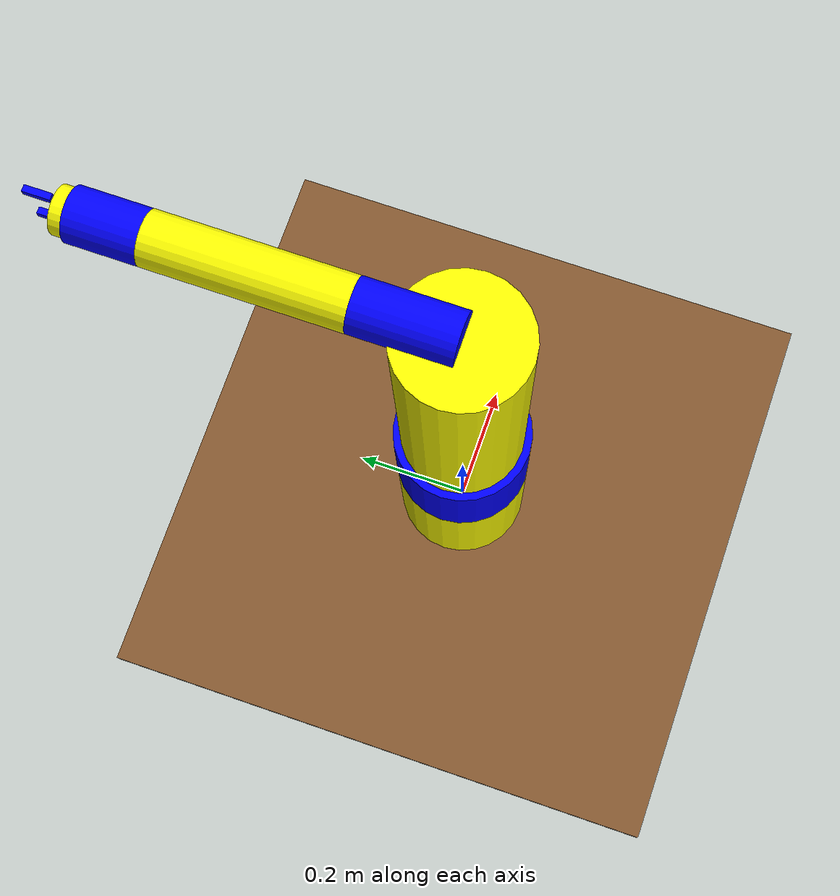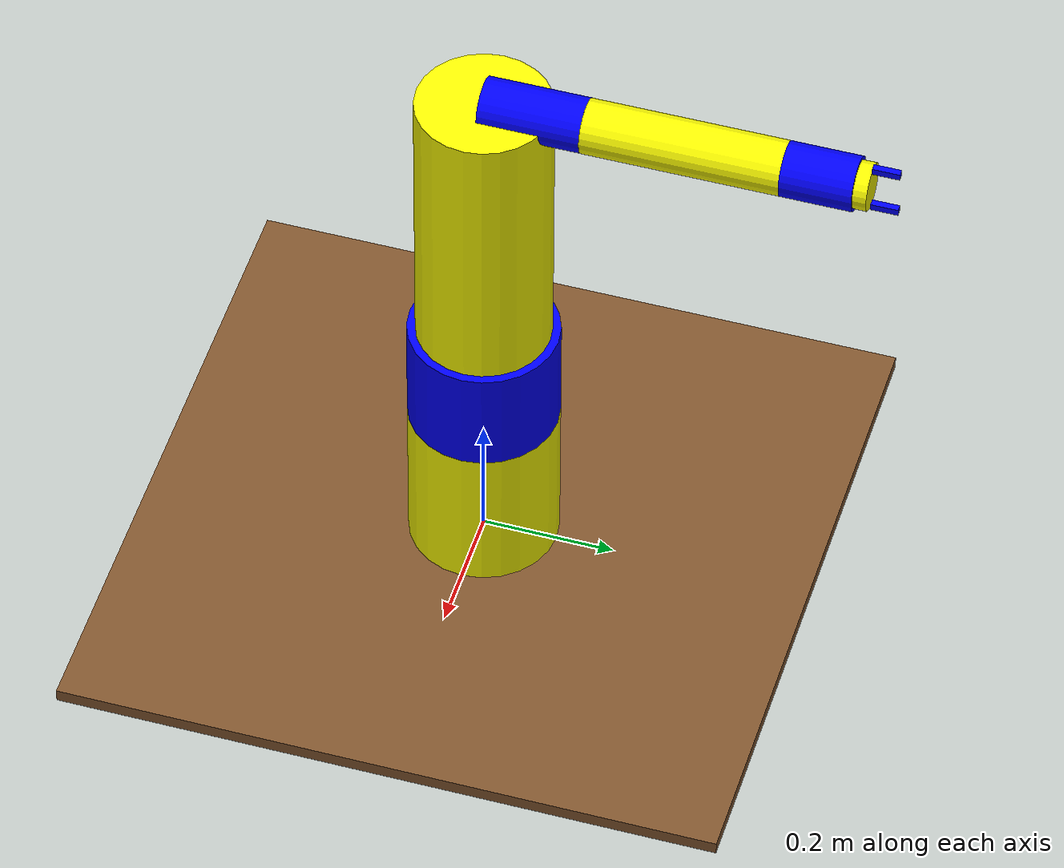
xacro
<?xml version="1.0"?>
<robot name="my_crp09" xmlns:xacro="http://ros.org/wiki/xacro">
  <!-- Include materials -->

    <material name="Black">
        <color rgba="0.0 0.0 0.0 1.0"/>
    </material>

    <material name="Red">
        <color rgba="0.8 0.0 0.0 1.0"/>
    </material>

    <material name="White">
        <color rgba="1.0 1.0 1.0 1.0"/>
    </material>

  <xacro:property name="deg_to_rad" value="0.01745329251994329577"/>

  <!-- Constants -->
  <xacro:property name="M_SCALE" value="0.001 0.001 0.001"/>
  <xacro:property name="M_PI" value="3.14159"/>

   <xacro:macro name="inertial_matrix" params="mass">
      <inertial>
      	<mass value="${mass}" />
        <inertia ixx="1.0" ixy="0.0" ixz="0.0" iyy="0.5" iyz="0.0" izz="1.0" />
      </inertial>
   </xacro:macro>

   <xacro:macro name="transmission_block" params="joint_name">
	  <transmission name="tran1">
	    <type>transmission_interface/SimpleTransmission</type>
	    <joint name="${joint_name}">
	      <hardwareInterface>hardware_interface/PositionJointInterface</hardwareInterface>
	    </joint>
	    <actuator name="motor1">
	      <hardwareInterface>hardware_interface/PositionJointInterface</hardwareInterface>
	      <mechanicalReduction>1</mechanicalReduction>
	    </actuator>
	  </transmission>
   </xacro:macro>

<!-- BOTTOM FIXED LINK
This link is the base of the arm in which arm is placed
-->

  <joint name="bottom_joint" type="fixed">
    <origin xyz="0 0 0" rpy="0 0 0" />
    <parent link="base_link"/>
    <child link="bottom_link"/>
  </joint>

  <link name="bottom_link">

    <visual>
      <origin xyz=" 0 0 -0.01"  rpy="0 0 0"/>
      <geometry>

	       <box size="1 1 0.02" />

      </geometry>
      <material name="Brown" />
    </visual>

    <collision>
      <origin xyz=" 0 0 -0.01"  rpy="0 0 0"/>
      <geometry>
	       <box size="1 1 0.02" />
      </geometry>
      </collision>>

  </link>

  <gazebo reference="bottom_link">
    <material>Gazebo/Red</material>
  </gazebo>

  <link name="base_link">

    <visual>
      <geometry>
	<cylinder length="0.25" radius="0.1125"/>
      </geometry>
      <origin rpy="0 0 0" xyz="0 0 0.125"/>
      <material name="yellow">
        <color rgba="1 1 0 1"/>
      </material>
    </visual>

    <collision>
      <geometry>
	<cylinder length="0.25" radius="0.1125"/>
      </geometry>
      <origin rpy="0 0 0" xyz="0 0 0.125"/>
    </collision>

    <inertial>
	<mass value="1"/>
	<inertia ixx="1.0" ixy="0.0" ixz="0.0" iyy="1.0" iyz="0.0" izz="1.0"/>
    </inertial>

  <gazebo reference="base_link">
    <material>Gazebo/White</material>
  </gazebo>
  </link>

  <joint name="joint1" type="revolute">
    <parent link="base_link"/>
    <child link="link1"/>
    <origin xyz="0 0 0.25"/>
    <axis xyz="0 0 1" />
    <limit effort="300" velocity="0.1" lower="-2.96" upper="2.96"/>
    <dynamics damping="50" friction="1"/>
  </joint>

  <link name="link1">
    <visual>
      <geometry>
	<cylinder length="0.171" radius="0.1125"/>
      </geometry>
      <origin rpy="0 0 0" xyz="0 0 0.0855"/>
      <material name="red">
        <color rgba="0 0 1 1"/>
      </material>
    </visual>

    <collision>
      <geometry>
	<cylinder length="0.171" radius="0.1125"/>
      </geometry>
      <origin rpy="0 0 0" xyz="0 0 0.0855"/>
    </collision>

    <inertial>
	<mass value="1"/>
	<inertia ixx="1.0" ixy="0.0" ixz="0.0" iyy="1.0" iyz="0.0" izz="1.0"/>
    </inertial>
  <gazebo reference="link1">
    <material>Gazebo/Red</material>
  </gazebo>
  </link>

  <joint name="joint2" type="revolute">
    <parent link="link1"/>
    <child link="link2"/>
    <origin xyz="0 0 0.171"/>
    <axis xyz="1 0 0" />
    <limit effort="300" velocity="0.1" lower="-2.355" upper="1.74"/>
    <dynamics damping="50" friction="1"/>
  </joint>

  <link name="link2">
    <visual>
      <geometry>
	<cylinder length="0.455" radius="0.1"/>
      </geometry>
      <origin rpy="0 0 0" xyz="0 0 0.2275"/>
      <material name="yellow">
        <color rgba="1 1 0 1"/>
      </material>
    </visual>

    <collision>
      <geometry>
	<cylinder length="0.455" radius="0.1"/>
      </geometry>
      <origin rpy="0 0 0" xyz="0 0 0.2275"/>
    </collision>

    <inertial>
	<mass value="1"/>
	<inertia ixx="1.0" ixy="0.0" ixz="0.0" iyy="1.0" iyz="0.0" izz="1.0"/>
    </inertial>
  <gazebo reference="link2">
    <material>Gazebo/White</material>
  </gazebo>
  </link>

    <joint name="joint3" type="revolute">
    <parent link="link2"/>
    <child link="link3"/>
    <origin xyz="0 0 0.455"/>
    <axis xyz="1 0 0" />
    <limit effort="300" velocity="0.1" lower="-1.13" upper="3.05"/>
    <dynamics damping="50" friction="1"/>
  </joint>

    <link name="link3">
    <visual>
      <geometry>
	<cylinder length="0.15" radius="0.04"/>
      </geometry>
      <origin rpy="-1.57 0 0" xyz="0 0.075 0"/>
      <material name="red">
        <color rgba="0 0 1 1"/>
      </material>
    </visual>

    <collision>
      <geometry>
	<cylinder length="0.15" radius="0.04"/>
      </geometry>
      <origin rpy="-1.57 0 0" xyz="0 0.075 0"/>
    </collision>

    <inertial>
	<mass value="1"/>
	<inertia ixx="1.0" ixy="0.0" ixz="0.0" iyy="1.0" iyz="0.0" izz="1.0"/>
    </inertial>

  <gazebo reference="link3">
    <material>Gazebo/Red</material>
  </gazebo>
  </link>

    <joint name="joint4" type="revolute">
    <parent link="link3"/>
    <child link="link4"/>
    <origin xyz="0 0.15 0"/>
    <axis xyz="0 1 0" />
    <limit effort="300" velocity="0.1" lower="-2.96" upper="2.96"/>
    <dynamics damping="50" friction="1"/>
  </joint>

      <link name="link4">
    <visual>
      <geometry>
	<cylinder length="0.29" radius="0.04"/>
      </geometry>
      <origin rpy="-1.57 0 0" xyz="0 0.145 0"/>
      <material name="yellow">
        <color rgba="1 1 0 1"/>
      </material>
    </visual>

    <collision>
      <geometry>
	<cylinder length="0.29" radius="0.04"/>
      </geometry>
      <origin rpy="-1.57 0 0" xyz="0 0.145 0"/>
    </collision>

    <inertial>
	<mass value="1"/>
	<inertia ixx="1.0" ixy="0.0" ixz="0.0" iyy="1.0" iyz="0.0" izz="1.0"/>
    </inertial>

  <gazebo reference="link4">
    <material>Gazebo/White</material>
  </gazebo>
  </link>

    <joint name="joint5" type="revolute">
    <parent link="link4"/>
    <child link="link5"/>
    <origin xyz="0 0.29 0"/>
    <axis xyz="1 0 0" />
    <limit effort="300" velocity="0.1" lower="-2.093" upper="2.093"/>
    <dynamics damping="50" friction="1"/>
  </joint>

   <link name="link5">
    <visual>
      <geometry>
	<cylinder length="0.105" radius="0.04"/>
      </geometry>
      <origin rpy="-1.57 0 0" xyz="0 0.0525 0"/>
      <material name="red">
        <color rgba="0 0 1 1"/>
      </material>
    </visual>

    <collision>
      <geometry>
	<cylinder length="0.105" radius="0.04"/>
      </geometry>
      <origin rpy="-1.57 0 0" xyz="0 0.0525 0"/>
    </collision>

    <inertial>
	<mass value="1"/>
	<inertia ixx="1.0" ixy="0.0" ixz="0.0" iyy="1.0" iyz="0.0" izz="1.0"/>
    </inertial>

  <gazebo reference="link5">
    <material>Gazebo/Red</material>
  </gazebo>
  </link>

  <joint name="joint6" type="revolute">
    <parent link="link5"/>
    <child link="link_tool"/>
    <origin xyz="0 0.105 0"/>
    <axis xyz="0 1 0" />
    <limit effort="300" velocity="0.1" lower="-3.14" upper="3.14"/>
    <dynamics damping="50" friction="1"/>
  </joint>

<!--tool-->
  <link name="link_tool">
    <visual>
      <geometry>
	<cylinder length="0.02" radius="0.035"/>
      </geometry>
      <origin rpy="-1.57 0 0" xyz="0 0.01 0"/>
      <material name="yellow">
        <color rgba="1 1 0 1"/>
      </material>
    </visual>

    <collision>
      <geometry>
	<cylinder length="0.02" radius="0.035"/>
      </geometry>
      <origin rpy="-1.57 0 0" xyz="0 0.01 0"/>
    </collision>

    <inertial>
	<mass value="1"/>
	<inertia ixx="1.0" ixy="0.0" ixz="0.0" iyy="1.0" iyz="0.0" izz="1.0"/>
    </inertial>

  <gazebo reference="link_tool">
    <material>Gazebo/White</material>
  </gazebo>
  </link>

  <joint name="finger_joint1" type="prismatic">
    <parent link="link_tool"/>
    <child link="gripper_finger1"/>
    <origin xyz="0 0.02 0.035"/>
    <axis xyz="0 0 1" />
    <limit effort="300" velocity="0.1" lower="-0.03" upper="0"/>
    <dynamics damping="50" friction="1"/>
  </joint>

  <link name="gripper_finger1">
    <visual>
      <geometry>
	<box size="0.01 0.01 0.04"/>
      </geometry>
      <origin rpy="-1.57 0 0" xyz="0 0.02 0"/>
      <material name="red">
        <color rgba="0 0 1 1"/>
      </material>
    </visual>

    <collision>
      <geometry>
	<box size="0.01 0.01 0.04"/>
      </geometry>
      <origin rpy="-1.57 0 0" xyz="0 0.02 0"/>
    </collision>

    <inertial>
	<mass value="1"/>
	<inertia ixx="1.0" ixy="0.0" ixz="0.0" iyy="1.0" iyz="0.0" izz="1.0"/>
    </inertial>

  <gazebo reference="gripper_finger1">
    <material>Gazebo/White</material>
  </gazebo>
  </link>

  <joint name="finger_joint2" type="prismatic">
    <parent link="link_tool"/>
    <child link="gripper_finger2"/>
    <origin xyz="0 0.02 -0.035"/>
    <axis xyz="0 0 1" />
    <limit effort="300" velocity="0.1" lower="0" upper="0.03"/>
    <dynamics damping="50" friction="1"/>
  </joint>

  <link name="gripper_finger2">
    <visual>
      <geometry>
	<box size="0.01 0.01 0.04"/>
      </geometry>
      <origin rpy="-1.57 0 0" xyz="0 0.02 0"/>
      <material name="red">
        <color rgba="0 0 1 1"/>
      </material>
    </visual>

    <collision>
      <geometry>
	<box size="0.01 0.01 0.04"/>
      </geometry>
      <origin rpy="-1.57 0 0" xyz="0 0.02 0"/>
    </collision>

    <inertial>
	<mass value="1"/>
	<inertia ixx="1.0" ixy="0.0" ixz="0.0" iyy="1.0" iyz="0.0" izz="1.0"/>
    </inertial>

  <gazebo reference="gripper_finger2">
    <material>Gazebo/White</material>
  </gazebo>

  </link>

  <!-- Transmissions for ROS Control -->

   <xacro:transmission_block joint_name="joint1"/>
   <xacro:transmission_block joint_name="joint2"/>
   <xacro:transmission_block joint_name="joint3"/>
   <xacro:transmission_block joint_name="joint4"/>
   <xacro:transmission_block joint_name="joint5"/>
   <xacro:transmission_block joint_name="joint6"/>
   <xacro:transmission_block joint_name="finger_joint1"/>
   <xacro:transmission_block joint_name="finger_joint2"/>

 <!-- ros_control plugin -->
  <gazebo>
    <plugin name="gazebo_ros_control" filename="libgazebo_ros_control.so">
      <robotNamespace>/my_crp09</robotNamespace>
    </plugin>
  </gazebo>

</robot>
